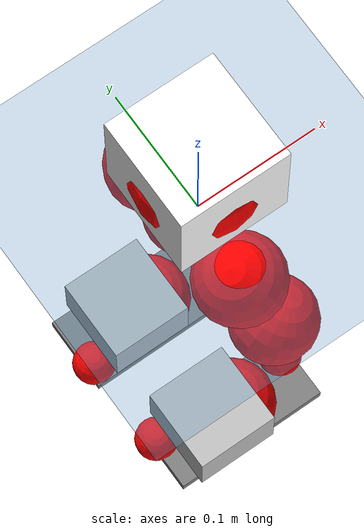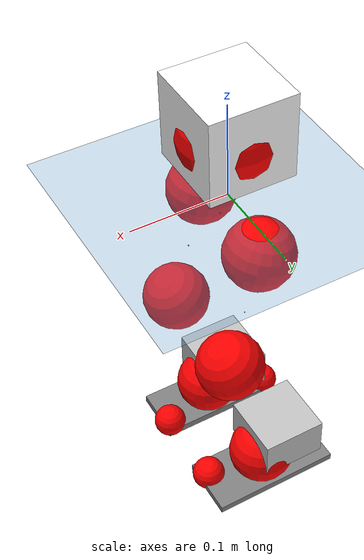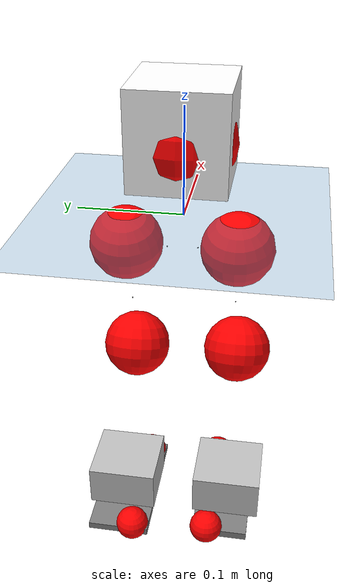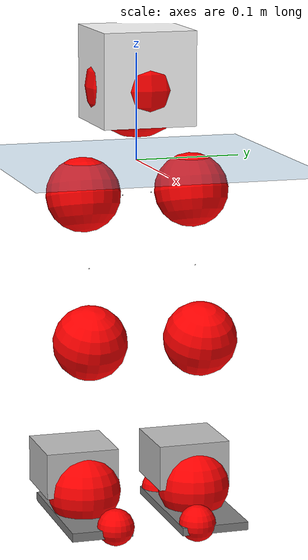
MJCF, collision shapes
<mujoco model="pi_12dof_release_v1">
  <compiler angle="radian" assetdir="assets" balanceinertia="true" inertiafromgeom="false"/>

  <option timestep="0.005" density="1.2" viscosity="2e-05"/>

  <size nkey="1"/>

  <visual>
    <quality shadowsize="8192"/>
    <map shadowclip="0.5"/>
  </visual>

  <default>
    <default class="/">
      <joint armature="0.01" damping="0.01" frictionloss="0.01"/>
      <geom contype="0" conaffinity="0" group="1" solref="-1000 -80"/>
      <site size="0.01 0.005 0.005" group="5"/>
      <general forcelimited="true" biastype="affine" gainprm="20" biasprm="0 -20 -0.5"/>
      <default class="foot">
        <geom size="0.0845 0.036 0.005" type="box" condim="6" group="4" priority="1" friction="0.9 0.2 0.2" solimp="0.015 1 0.005"/>
      </default>
      <default class="reward_collision_sphere">
        <geom group="5" rgba="1 0 0 1"/>
      </default>
    </default>
  </default>

  <asset>
    <texture type="skybox" colorspace="auto" name="//unnamed_texture_0" builtin="gradient" rgb1="0.95 0.95 0.95" rgb2="0.95 0.95 0.95" width="100" height="600"/>
    <texture type="2d" colorspace="auto" name="texplane" builtin="checker" rgb1="0.345 0.575 0.748" rgb2="0.345 0.575 0.748" markrgb="1 1 1" width="512" height="512"/>
    <material name="MatPlane" class="/" texture="texplane" texuniform="true" texrepeat="2 2" specular="0.9"/>
    <mesh name="baselink_1" class="/" file="baselink_1.STL"/>
    <mesh name="r_hip_pitch_link" class="/" file="r_hip_pitch_link.STL"/>
    <mesh name="r_hip_roll_link" class="/" file="r_hip_roll_link.STL"/>
    <mesh name="r_thigh_link" class="/" file="r_thigh_link.STL"/>
    <mesh name="r_calf_link" class="/" file="r_calf_link.STL"/>
    <mesh name="r_ankle_pitch_link" class="/" file="r_ankle_pitch_link.STL"/>
    <mesh name="r_ankle_roll_link" class="/" file="r_ankle_roll_link.STL"/>
    <mesh name="l_hip_pitch_link" class="/" file="l_hip_pitch_link.STL"/>
    <mesh name="l_hip_roll_link" class="/" file="l_hip_roll_link.STL"/>
    <mesh name="l_thigh_link" class="/" file="l_thigh_link.STL"/>
    <mesh name="l_calf_link" class="/" file="l_calf_link.STL"/>
    <mesh name="l_ankle_pitch_link" class="/" file="l_ankle_pitch_link.STL"/>
    <mesh name="l_ankle_roll_link" class="/" file="l_ankle_roll_link.STL"/>
  </asset>

  <worldbody>
    <geom name="floor" class="/" size="100 100 0.125" type="plane" group="0" material="MatPlane"/>
    <light name="toplight_shadow" class="/" pos="0 0 5" dir="0.0990148 0.0990148 -0.990148" type="directional" ambient="0.04 0.04 0.04" diffuse="0.55 0.55 0.55" specular="0.12 0.12 0.12"/>
    <light name="toplight_fill" class="/" pos="0 0 5" dir="0.0990148 0.0990148 -0.990148" type="directional" castshadow="false" ambient="0.04 0.04 0.04" diffuse="0.3 0.3 0.3" specular="0.08 0.08 0.08"/>
    <body name="trunk" pos="-0.000649167 0.000476383 -0.000876987" quat="1 -0.000130289 0.000578448 0.000419312">
      <inertial pos="0.00148724 0.00156781 0.0397753" quat="0.691357 0.0125689 0.00400674 0.722393" mass="1.4237" diaginertia="0.00557171 0.0019834 0.00426243"/>
      <joint name="//unnamed_joint_0" type="free"/>
      <geom name="//unnamed_geom_1" class="/" type="mesh" density="0" rgba="1 1 1 1" mesh="baselink_1"/>
      <geom name="//unnamed_geom_2" class="/" size="0.0439216 0.0439216 0.0439216" pos="0 0 0.0804714" type="box" rgba="1 1 1 1"/>
      <geom name="//unnamed_geom_3" class="reward_collision_sphere" size="0.0483138" pos="0 0 0.0704125"/>
      <site name="imu" class="/" pos="0.000945276 0.0141489 -0.0123959" size="0.00878432"/>
      <camera name="track" class="/" pos="0 -1.47714 0" quat="0.707107 0.707107 0 0" mode="trackcom"/>
      <camera name="ego_camera" class="/" pos="0.0668127 0 0.181061" quat="-0.5 -0.5 0.5 0.5"/>
      <body name="r_hip_pitch_link" pos="0.00130817 -0.0141704 -0.0316544" quat="0.992198 -2.28088e-05 -0.124674 -1.87637e-06">
        <inertial pos="-0.000960438 -0.0402018 -0.0012379" quat="-0.0204799 0.704039 -0.0325502 0.70912" mass="0.242679" diaginertia="6.06917e-05 2.04373e-05 8.23674e-05"/>
        <joint name="r_hip_pitch_joint" class="/" pos="0 0 0" axis="0.00188481 -0.999993 -0.00308487" range="-1.73713 1.22605" armature="0.00903381" damping="0.00281916" frictionloss="0.0086988"/>
        <geom name="//unnamed_geom_4" class="/" type="mesh" density="0" rgba="0.75294 0.75294 0.75294 1" mesh="r_hip_pitch_link"/>
        <geom name="//unnamed_geom_5" class="/" size="0.000439216 0.000439216 0.000439216" type="box" rgba="0.75294 0.75294 0.75294 1"/>
        <body name="r_hip_roll_link" pos="-0.000772905 -0.0378106 0.00227284" quat="1 -0.000131967 -0.000109162 0.000250429">
          <inertial pos="-0.00353749 -0.000415846 -0.0624769" quat="0.702772 -0.083414 -0.0772431 0.702273" mass="0.259072" diaginertia="0.00018368 5.94947e-05 0.000125179"/>
          <joint name="r_hip_roll_joint" class="/" pos="0 0 0" axis="-0.99991 0.01092 0.00777123" range="-0.11426 0.483949" armature="0.00850044" damping="0.00711727" frictionloss="0.0100315"/>
          <geom name="//unnamed_geom_6" class="/" type="mesh" density="0" rgba="0.75294 0.75294 0.75294 1" mesh="r_hip_roll_link"/>
          <geom name="//unnamed_geom_7" class="/" size="0.000439216 0.000439216 0.000439216" type="box" rgba="0.75294 0.75294 0.75294 1"/>
          <geom name="//unnamed_geom_8" class="reward_collision_sphere" size="0.0351373"/>
          <body name="r_thigh_link" pos="-0.000314221 0.000625981 -0.0691998" quat="1 -0.000172279 9.35063e-05 -0.000274159">
            <inertial pos="0.00016686 -0.000442609 -0.0471831" quat="0.739596 0.673044 0.00143563 0.00284892" mass="0.077408" diaginertia="6.93844e-05 2.07633e-05 5.98965e-05"/>
            <joint name="r_thigh_joint" class="/" pos="0 0 0" axis="-0.00157377 -0.00242392 -0.999996" stiffness="0.0092875" range="-0.356484 0.634963" armature="0.00856799" damping="0.018173" frictionloss="0.00883138"/>
            <geom name="//unnamed_geom_9" class="/" type="mesh" density="0" rgba="0.75294 0.75294 0.75294 1" mesh="r_thigh_link"/>
            <geom name="//unnamed_geom_10" class="/" size="0.000439216 0.000439216 0.000439216" type="box" rgba="0.75294 0.75294 0.75294 1"/>
            <body name="r_calf_link" pos="-0.00229209 -0.00328778 -0.0688997" quat="0.947588 0.00019437 0.319494 -0.000149347">
              <inertial pos="-0.00303727 -0.000687977 -0.0693011" quat="0.999968 -0.0065338 -0.001292 0.00441082" mass="0.545727" diaginertia="0.00193652 0.000757516 0.000175151"/>
              <joint name="r_calf_joint" class="/" pos="0 0 0" axis="0.00757931 -0.999967 0.00280353" range="-1.65711 0.702992" armature="0.0088763" damping="0.00396954" frictionloss="0.00835186"/>
              <geom name="//unnamed_geom_11" class="/" type="mesh" density="0" rgba="0.75294 0.75294 0.75294 1" mesh="r_calf_link"/>
              <geom name="//unnamed_geom_12" class="/" size="0.000439216 0.000439216 0.000439216" type="box" rgba="0.75294 0.75294 0.75294 1"/>
              <geom name="//unnamed_geom_13" class="reward_collision_sphere" size="0.0351373"/>
              <body name="r_ankle_pitch_link" pos="0.000415487 -0.00153013 -0.144796" quat="0.980119 -0.00110898 -0.198407 0.000659909">
                <inertial pos="0.00160585 0.00310632 -0.0021986" quat="0.000195867 0.703484 0.00114127 0.71071" mass="0.123262" diaginertia="0.000171173 4.74054e-05 0.000127442"/>
                <joint name="r_ankle_pitch_joint" class="/" pos="0 0 0" axis="-0.0123051 -0.99991 -0.00536112" range="-1.35426 0.497906" armature="0.00786089" damping="0.00976434" frictionloss="0.00867296"/>
                <geom name="//unnamed_geom_14" class="/" type="mesh" density="0" rgba="0.75294 0.75294 0.75294 1" mesh="r_ankle_pitch_link"/>
                <geom name="//unnamed_geom_15" class="/" size="0.0342589 0.0351373 0.0219608" type="box" rgba="0.75294 0.75294 0.75294 1"/>
                <body name="r_ankle_roll_link" pos="0.0671246 0.00419592 0.000725096" quat="1 -3.84834e-05 0.000206606 -7.11669e-05">
                  <inertial pos="-0.0229981 -0.00150479 -0.0123438" quat="0.558782 0.430219 0.43596 0.559119" mass="0.345719" diaginertia="0.000630494 0.00022758 0.000275894"/>
                  <joint name="r_ankle_roll_joint" class="/" pos="0 0 0" axis="-0.999985 -0.000944685 0.00531176" stiffness="0.00680349" range="-0.157082 0.208664" armature="0.00793504" damping="0" frictionloss="0.00817506"/>
                  <geom name="//unnamed_geom_16" class="/" type="mesh" density="0" rgba="0.75294 0.75294 0.75294 1" mesh="r_ankle_roll_link"/>
                  <geom name="//unnamed_geom_17" class="/" type="mesh" rgba="0.75294 0.75294 0.75294 1" mesh="r_ankle_roll_link"/>
                  <geom name="right_foot" class="foot" size="0.0667769 0.0294259 0.00419305" pos="-0.0454326 0 -0.0442593"/>
                  <geom name="//unnamed_geom_19" class="reward_collision_sphere" size="0.0351373" pos="-0.0445418 0 -0.0201179"/>
                  <geom name="//unnamed_geom_20" class="reward_collision_sphere" size="0.0175686" pos="0.0133625 0.0147714 -0.0402357"/>
                  <geom name="//unnamed_geom_21" class="reward_collision_sphere" size="0.0175686" pos="-0.1069 0.0147714 -0.0402357"/>
                  <site name="right_foot" class="foot" pos="-0.0454326 0 -0.0442593" size="0.00878432"/>
                </body>
              </body>
            </body>
          </body>
        </body>
      </body>
      <body name="l_hip_pitch_link" pos="-0.00134423 0.014539 -0.0311098" quat="0.992188 0.000670763 -0.124749 -0.000175666">
        <inertial pos="-0.00163186 0.0382022 -0.0006016" quat="-0.0341499 0.701116 0.0376358 0.711234" mass="0.257459" diaginertia="6.71583e-05 2.29151e-05 9.68997e-05"/>
        <joint name="l_hip_pitch_joint" class="/" pos="0 0 0" axis="0.0102379 0.999939 -0.00409342" range="-1.26622 1.69842" armature="0.00887446" damping="0" frictionloss="0.00999897"/>
        <geom name="//unnamed_geom_22" class="/" type="mesh" density="0" rgba="0.75294 0.75294 0.75294 1" mesh="l_hip_pitch_link"/>
        <geom name="//unnamed_geom_23" class="/" size="0.000439216 0.000439216 0.000439216" type="box" rgba="0.75294 0.75294 0.75294 1"/>
        <body name="l_hip_roll_link" pos="0.000730029 0.0393427 0.000639486" quat="0.999999 0.000925612 -0.000420548 0.000708034">
          <inertial pos="-0.00109112 -0.00267245 -0.0618473" quat="0.699329 -0.0757922 -0.0780186 0.706475" mass="0.266783" diaginertia="0.000190503 6.07406e-05 0.000137054"/>
          <joint name="l_hip_roll_joint" class="/" pos="0 0 0" axis="-0.999993 0.00220457 0.0029683" range="-0.503717 0.057069" armature="0.00773169" damping="0.0182263" frictionloss="0.00882636"/>
          <geom name="//unnamed_geom_24" class="/" type="mesh" density="0" rgba="0.75294 0.75294 0.75294 1" mesh="l_hip_roll_link"/>
          <geom name="//unnamed_geom_25" class="/" size="0.000439216 0.000439216 0.000439216" type="box" rgba="0.75294 0.75294 0.75294 1"/>
          <geom name="//unnamed_geom_26" class="reward_collision_sphere" size="0.0351373"/>
          <body name="l_thigh_link" pos="-0.00315647 -0.000896468 -0.071189" quat="0.999999 -0.000573192 0.0008908 0.000568267">
            <inertial pos="-0.00063973 0.00125787 -0.0486364" quat="0.680813 0.732446 0.00394788 -0.000964612" mass="0.0729222" diaginertia="6.785e-05 1.9413e-05 5.93706e-05"/>
            <joint name="l_thigh_joint" class="/" pos="0 0 0" axis="-0.0027809 0.000193718 -0.999996" range="-0.582249 0.308141" armature="0.0083592" damping="0" frictionloss="0.0090642"/>
            <geom name="//unnamed_geom_27" class="/" type="mesh" density="0" rgba="0.75294 0.75294 0.75294 1" mesh="l_thigh_link"/>
            <geom name="//unnamed_geom_28" class="/" size="0.000439216 0.000439216 0.000439216" type="box" rgba="0.75294 0.75294 0.75294 1"/>
            <body name="l_calf_link" pos="-0.00099949 -3.50768e-06 -0.0694044" quat="0.947726 -0.000120772 0.319086 7.66057e-05">
              <inertial pos="-0.00230396 -0.000850447 -0.0686724" quat="0.999909 0.00647697 -0.00232689 0.0115798" mass="0.556933" diaginertia="0.0020292 0.000773301 0.000187991"/>
              <joint name="l_calf_joint" class="/" pos="0 0 0" axis="-0.00790841 0.999875 -0.0136621" range="-0.689702 1.68312" armature="0.00918327" damping="0" frictionloss="0.0100236"/>
              <geom name="//unnamed_geom_29" class="/" type="mesh" density="0" rgba="0.75294 0.75294 0.75294 1" mesh="l_calf_link"/>
              <geom name="//unnamed_geom_30" class="/" size="0.000439216 0.000439216 0.000439216" type="box" rgba="0.75294 0.75294 0.75294 1"/>
              <geom name="//unnamed_geom_31" class="reward_collision_sphere" size="0.0351373"/>
              <body name="l_ankle_pitch_link" pos="-0.000711728 0.00275568 -0.144007" quat="0.980032 0.000104567 -0.198842 -4.55447e-05">
                <inertial pos="0.00711986 -0.00378234 -0.00172641" quat="0.000761438 0.714763 0.0104417 0.699288" mass="0.116143" diaginertia="0.00017354 4.76789e-05 0.000122063"/>
                <joint name="l_ankle_pitch_joint" class="/" pos="0 0 0" axis="0.00352055 0.999993 -0.00100162" stiffness="0.00920149" range="-0.564055 1.277" armature="0.00758647" damping="0.00815259" frictionloss="0.00771343"/>
                <geom name="//unnamed_geom_32" class="/" type="mesh" density="0" rgba="0.75294 0.75294 0.75294 1" mesh="l_ankle_pitch_link"/>
                <geom name="//unnamed_geom_33" class="/" size="0.0342589 0.0351373 0.0219608" type="box" rgba="0.75294 0.75294 0.75294 1"/>
                <body name="l_ankle_roll_link" pos="0.0658117 0.00286688 -0.00203549" quat="1 -1.42952e-05 6.58435e-05 9.54758e-06">
                  <inertial pos="-0.0207821 -0.000603046 -0.0138659" quat="0.563124 0.433425 0.435727 0.552428" mass="0.362989" diaginertia="0.000659038 0.000242785 0.000296706"/>
                  <joint name="l_ankle_roll_joint" class="/" pos="0 0 0" axis="-1 -0.000665771 0.000239171" range="-0.157573 0.147861" armature="0.0084693" damping="0" frictionloss="0.00761044"/>
                  <geom name="//unnamed_geom_34" class="/" type="mesh" density="0" rgba="0.75294 0.75294 0.75294 1" mesh="l_ankle_roll_link"/>
                  <geom name="//unnamed_geom_35" class="/" type="mesh" rgba="0.75294 0.75294 0.75294 1" mesh="l_ankle_roll_link"/>
                  <geom name="left_foot" class="foot" size="0.0696029 0.032586 0.00390293" pos="-0.0454326 0 -0.0442593"/>
                  <geom name="//unnamed_geom_37" class="reward_collision_sphere" size="0.0351373" pos="-0.0445418 0 -0.0201179"/>
                  <geom name="//unnamed_geom_38" class="reward_collision_sphere" size="0.0175686" pos="0.0133625 -0.0147714 -0.0402357"/>
                  <geom name="//unnamed_geom_39" class="reward_collision_sphere" size="0.0175686" pos="-0.1069 -0.0147714 -0.0402357"/>
                  <site name="left_foot" class="foot" pos="-0.0454326 0 -0.0442593" size="0.00878432"/>
                </body>
              </body>
            </body>
          </body>
        </body>
      </body>
    </body>
  </worldbody>

  <contact>
    <pair class="/" geom1="floor" geom2="right_foot" name="//unnamed_contact_1"/>
    <pair class="/" geom1="floor" geom2="left_foot" name="//unnamed_contact_0"/>
  </contact>

  <actuator>
    <general name="r_hip_pitch_joint" class="/" joint="r_hip_pitch_joint" forcerange="-19.8722 19.8722" gainprm="17.5174" biasprm="0 -17.5174 -0.422131"/>
    <general name="r_hip_roll_joint" class="/" joint="r_hip_roll_joint" forcerange="-18.1209 18.1209" gainprm="17.5174" biasprm="0 -17.5174 -0.422131"/>
    <general name="r_thigh_joint" class="/" joint="r_thigh_joint" forcerange="-18.1485 18.1485" gainprm="17.5174" biasprm="0 -17.5174 -0.422131"/>
    <general name="r_calf_joint" class="/" joint="r_calf_joint" forcerange="-18.5704 18.5704" gainprm="17.5174" biasprm="0 -17.5174 -0.422131"/>
    <general name="r_ankle_pitch_joint" class="/" joint="r_ankle_pitch_joint" forcerange="-16.6888 16.6888" gainprm="17.5174" biasprm="0 -17.5174 -0.422131"/>
    <general name="r_ankle_roll_joint" class="/" joint="r_ankle_roll_joint" forcerange="-18.0381 18.0381" gainprm="17.5174" biasprm="0 -17.5174 -0.422131"/>
    <general name="l_hip_pitch_joint" class="/" joint="l_hip_pitch_joint" forcerange="-18.3205 18.3205" gainprm="17.5174" biasprm="0 -17.5174 -0.422131"/>
    <general name="l_hip_roll_joint" class="/" joint="l_hip_roll_joint" forcerange="-18.5087 18.5087" gainprm="17.5174" biasprm="0 -17.5174 -0.422131"/>
    <general name="l_thigh_joint" class="/" joint="l_thigh_joint" forcerange="-20.3863 20.3863" gainprm="17.5174" biasprm="0 -17.5174 -0.422131"/>
    <general name="l_calf_joint" class="/" joint="l_calf_joint" forcerange="-18.5834 18.5834" gainprm="17.5174" biasprm="0 -17.5174 -0.422131"/>
    <general name="l_ankle_pitch_joint" class="/" joint="l_ankle_pitch_joint" forcerange="-20.3348 20.3348" gainprm="17.5174" biasprm="0 -17.5174 -0.422131"/>
    <general name="l_ankle_roll_joint" class="/" joint="l_ankle_roll_joint" forcerange="-18.333 18.333" gainprm="17.5174" biasprm="0 -17.5174 -0.422131"/>
  </actuator>

  <sensor>
    <gyro site="imu" name="imu_angular_velocity"/>
    <velocimeter site="imu" name="imu_linear_velocity"/>
    <framelinvel objtype="site" objname="left_foot" name="left_foot_global_linear_velocity"/>
    <framelinvel objtype="site" objname="right_foot" name="right_foot_global_linear_velocity"/>
  </sensor>

  <keyframe>
    <key name="home" qpos="0 0 0.291 1 0 0 0 0.4 0 0 -0.8 0.4 0 -0.4 0 0 0.8 -0.4 0"/>
  </keyframe>
</mujoco>
